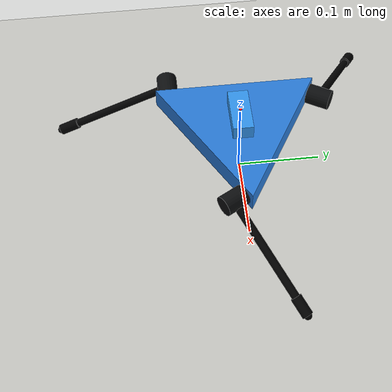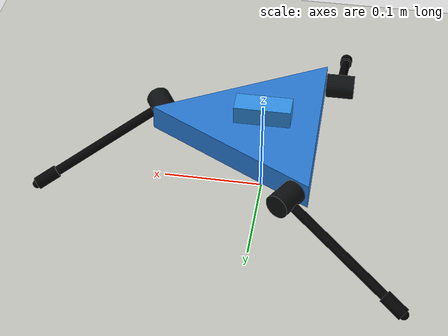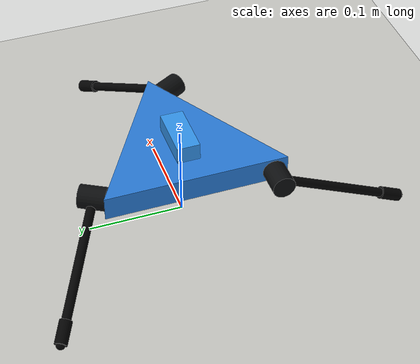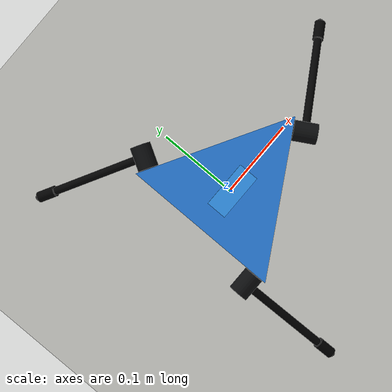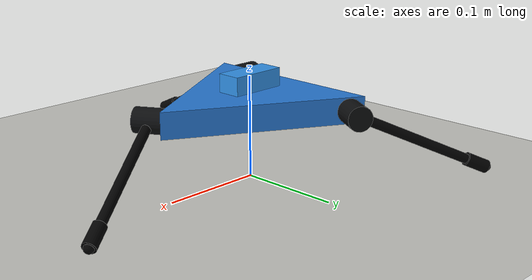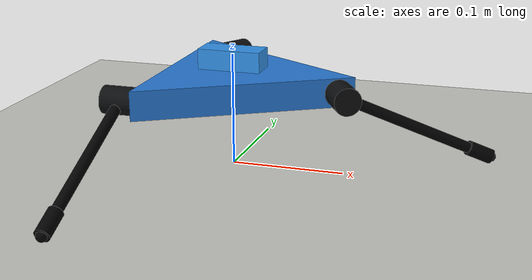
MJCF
<mujoco model="bram_exact_triangle_tripod">
    <visual>
       <global glow="0.5" />
       <headlight active="1" diffuse="0.9 0.9 0.9" ambient="0.6 0.6 0.6" />
   </visual>
  <compiler angle="radian" autolimits="true" />
  <option timestep="0.002" gravity="0 0 -9.81" />

  <default>
    <joint damping="0.12" armature="0.001" />
    <geom solref="0.01 1" solimp="0.9 0.95 0.001" />
  </default>

  <asset>
    <material name="print_blue" rgba="0.16 0.48 0.84 1" />
    <material name="servo_black" rgba="0.05 0.055 0.06 1" />
    <material name="horn_gray" rgba="0.70 0.72 0.74 1" />
    <material name="carbon" rgba="0.01 0.01 0.01 1" />
    <material name="battery_blue" rgba="0.20 0.58 0.92 1" />

    <!--
      7.5 in equilateral triangular prism centered at the chassis body frame.
      Side length: 0.190500 m
      Circumradius: 0.109985 m
      Thickness: 0.025400 m
    -->
    <mesh
            name="triangle_chassis_mesh"
            vertex="
        0.10998523 0.00000000 -0.01270000
        -0.05499261 0.09525000 -0.01270000
        -0.05499261 -0.09525000 -0.01270000
        0.10998523 0.00000000 0.01270000
        -0.05499261 0.09525000 0.01270000
        -0.05499261 -0.09525000 0.01270000
      "
            face="
        0 2 1
        3 4 5
        0 1 4
        0 4 3
        1 2 5
        1 5 4
        2 0 3
        2 3 5
      "
        />
  </asset>

  <worldbody>
    <light pos="0 0 1.5" dir="0 0 -1" />
    <camera
            name="track"
            mode="trackcom"
            pos="0.45 -0.45 0.30"
            xyaxes="1 1 0 -0.3 0.3 1"
        />

    <geom
            name="floor"
            type="plane"
            size="3 3 0.05"
            friction="1.0 0.005 0.0001"
            rgba="0.78 0.78 0.76 1"
        />

    <body name="chassis" pos="0 0 0.075">
      <freejoint />

      <site name="imu_site" pos="0 0 0.025" size="0.006" rgba="1 0 0 1" />

      <geom
                name="chassis_triangle"
                type="mesh"
                mesh="triangle_chassis_mesh"
                contype="0"
                conaffinity="0"
                mass="0.110"
                material="print_blue"
            />

      <geom
                name="battery"
                type="box"
                pos="0.000 0.000 0.0217"
                size="0.028 0.012 0.009"
                contype="0"
                conaffinity="0"
                mass="0.057"
                material="battery_blue"
            />

      <!-- Simplified servo masses: one hinge cylinder at each pivot. -->
      <geom
                name="servo_front"
                type="cylinder"
                fromto="0.11155642 -0.03259235 0 0.09755642 -0.00834363 0"
                size="0.012"
                contype="0"
                conaffinity="0"
                mass="0.070"
                material="servo_black"
            />
      <geom
                name="servo_back_left"
                type="cylinder"
                fromto="-0.02755241 0.11290687 0 -0.04155241 0.08865815 0"
                size="0.012"
                contype="0"
                conaffinity="0"
                mass="0.070"
                material="servo_black"
            />
      <geom
                name="servo_back_right"
                type="cylinder"
                fromto="-0.08400401 -0.08031452 0 -0.05600401 -0.08031452 0"
                size="0.012"
                contype="0"
                conaffinity="0"
                mass="0.070"
                material="servo_black"
            />

      <body
                name="leg_front"
                pos="0.10455642 -0.02046799 0"
                euler="0 0 -2.61799387799"
            >
        <joint
                    name="hip_front"
                    type="hinge"
                    axis="0 1 0"
                    range="-1.3962634 1.3962634"
                />
        <geom
                    name="front_leg_tube"
                    type="capsule"
                    fromto="0 0 0 -0.13610591 0 -0.06304904"
                    size="0.0047625"
                    mass="0.011"
                    friction="1.2 0.04 0.005"
                    material="carbon"
                />
        <geom
                    name="front_rubber_tip"
                    type="cylinder"
                    fromto="-0.11432896 0 -0.05296120 -0.13610591 0 -0.06304904"
                    size="0.0065"
                    mass="0.003"
                    condim="4"
                    friction="1.7 0.08 0.01"
                    material="carbon"
                />
      </body>

      <body
                name="leg_back_left"
                pos="-0.03455241 0.10078251 0"
                euler="0 0 -0.52359877560"
            >
        <joint
                    name="hip_back_left"
                    type="hinge"
                    axis="0 1 0"
                    range="-1.3962634 1.3962634"
                />
        <geom
                    name="back_left_leg_tube"
                    type="capsule"
                    fromto="0 0 0 -0.13610591 0 -0.06304904"
                    size="0.0047625"
                    mass="0.011"
                    friction="1.2 0.04 0.005"
                    material="carbon"
                />
        <geom
                    name="back_left_rubber_tip"
                    type="cylinder"
                    fromto="-0.11432896 0 -0.05296120 -0.13610591 0 -0.06304904"
                    size="0.0065"
                    mass="0.003"
                    condim="4"
                    friction="1.7 0.08 0.01"
                    material="carbon"
                />
      </body>

      <body
                name="leg_back_right"
                pos="-0.07000401 -0.08031452 0"
                euler="0 0 1.57079632679"
            >
        <joint
                    name="hip_back_right"
                    type="hinge"
                    axis="0 1 0"
                    range="-1.3962634 1.3962634"
                />
        <geom
                    name="back_right_leg_tube"
                    type="capsule"
                    fromto="0 0 0 -0.13610591 0 -0.06304904"
                    size="0.0047625"
                    mass="0.011"
                    friction="1.2 0.04 0.005"
                    material="carbon"
                />
        <geom
                    name="back_right_rubber_tip"
                    type="cylinder"
                    fromto="-0.11432896 0 -0.05296120 -0.13610591 0 -0.06304904"
                    size="0.0065"
                    mass="0.003"
                    condim="4"
                    friction="1.7 0.08 0.01"
                    material="carbon"
                />
      </body>
    </body>
  </worldbody>

  <contact>
    <exclude body1="chassis" body2="leg_front" />
    <exclude body1="chassis" body2="leg_back_left" />
    <exclude body1="chassis" body2="leg_back_right" />
  </contact>

  <actuator>
    <position
            name="servo_front"
            joint="hip_front"
            kp="18"
            ctrlrange="-1.3962634 1.3962634"
            forcerange="-3.0 3.0"
        />
    <position
            name="servo_back_left"
            joint="hip_back_left"
            kp="18"
            ctrlrange="-1.3962634 1.3962634"
            forcerange="-3.0 3.0"
        />
    <position
            name="servo_back_right"
            joint="hip_back_right"
            kp="18"
            ctrlrange="-1.3962634 1.3962634"
            forcerange="-3.0 3.0"
        />
  </actuator>

  <sensor>
    <gyro name="gyro" site="imu_site" />
    <accelerometer name="accel" site="imu_site" />
    <framequat name="orientation" objtype="site" objname="imu_site" />
  </sensor>
</mujoco>
